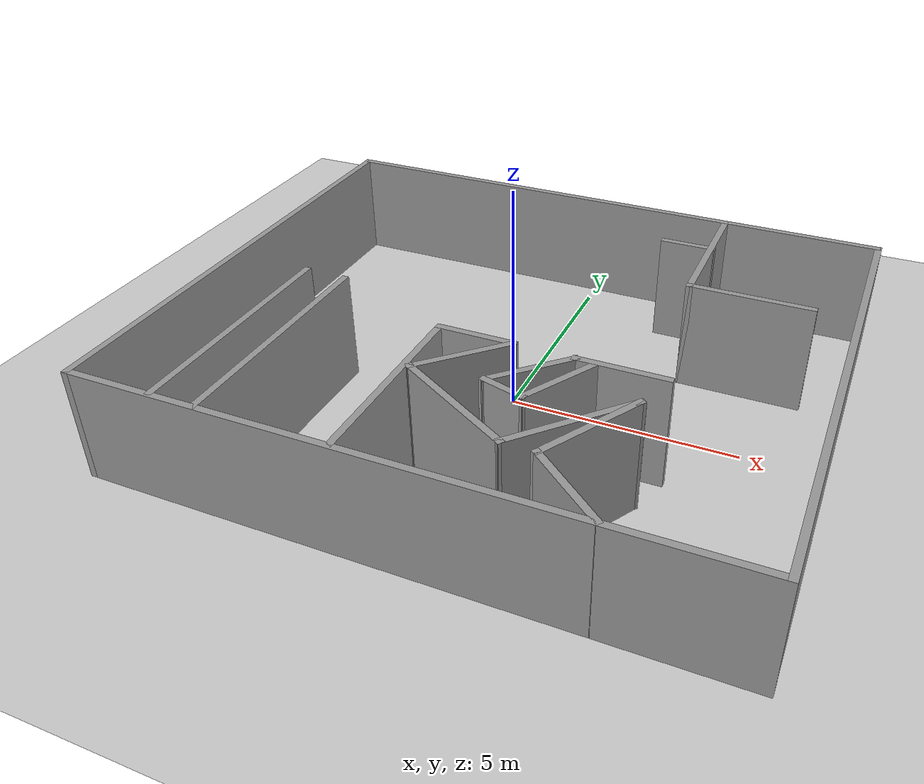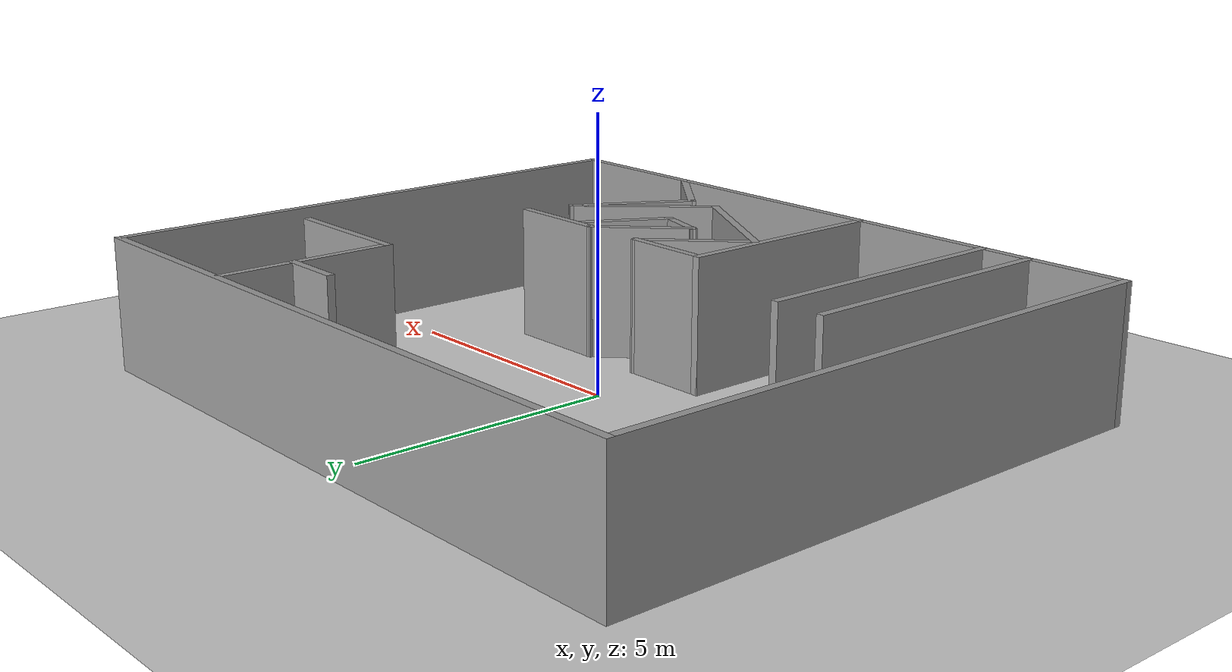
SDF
<sdf version="1.6">
 <world name="default">
  <light name="sun" type="directional">
   <pose>0 0 10 0 -0 0</pose>
   <diffuse>0.8 0.8 0.8 1</diffuse>
   <specular>0.2 0.2 0.2 1</specular>
   <attenuation>
    <range>1000</range>
    <constant>0.9</constant>
    <linear>0.01</linear>
    <quadratic>0.001</quadratic>
   </attenuation>
   <direction>-0.5 0.1 -0.9</direction>
  </light>
  <model name="ground_plane">
   <static>1</static>
   <link name="link">
    <collision name="collision">
     <geometry><plane><normal>0 0 1</normal><size>100 100</size></plane></geometry>
     <surface>
      <contact><collide_bitmask>65535</collide_bitmask></contact>
      <friction><ode><mu>100</mu><mu2>50</mu2></ode></friction>
     </surface>
    </collision>
    <visual name="visual">
     <cast_shadows>0</cast_shadows>
     <geometry><plane><normal>0 0 1</normal><size>100 100</size></plane></geometry>
     <material>
      <script><uri>file://media/materials/scripts/gazebo.material</uri><name>Gazebo/Grey</name></script>
     </material>
    </visual>
   </link>
  </model>
  <gravity>0 0 -9.8</gravity>
  <magnetic_field>6e-06 2.3e-05 -4.2e-05</magnetic_field>
  <atmosphere type="adiabatic"/>
  <physics name="default_physics" default="0" type="ode">
   <max_step_size>0.001</max_step_size>
   <real_time_factor>1</real_time_factor>
   <real_time_update_rate>1000</real_time_update_rate>
  </physics>
  <scene><ambient>0.4 0.4 0.4 1</ambient><background>0.7 0.7 0.7 1</background><shadows>1</shadows></scene>
  <spherical_coordinates>
   <surface_model>EARTH_WGS84</surface_model>
   <latitude_deg>0</latitude_deg>
   <longitude_deg>0</longitude_deg>
   <elevation>0</elevation>
   <heading_deg>0</heading_deg>
  </spherical_coordinates>
  <model name="building_tags">
   <link name="Wall_0">
    <collision name="Wall_0_Collision">
     <geometry><box><size>11.25 0.15 2.5</size></box></geometry>
     <pose>0 0 1.25 0 -0 0</pose>
    </collision>
    <visual name="Wall_0_Visual">
     <pose>0 0 1.25 0 -0 0</pose>
     <geometry><box><size>11.25 0.15 2.5</size></box></geometry>
     <material>
      <script><uri>file://media/materials/scripts/gazebo.material</uri><name>Gazebo/Grey</name></script>
      <ambient>1 1 1 1</ambient>
     </material>
     <meta><layer>0</layer></meta>
    </visual>
    <pose>-6.675 0.002685 0 0 -0 1.5708</pose>
   </link>
   <link name="Wall_10">
    <collision name="Wall_10_Collision">
     <geometry><box><size>5.25 0.15 2.5</size></box></geometry>
     <pose>0 0 1.25 0 -0 0</pose>
    </collision>
    <visual name="Wall_10_Visual">
     <pose>0 0 1.25 0 -0 0</pose>
     <geometry><box><size>5.25 0.15 2.5</size></box></geometry>
     <material>
      <script><uri>file://media/materials/scripts/gazebo.material</uri><name>Gazebo/Grey</name></script>
      <ambient>1 1 1 1</ambient>
     </material>
     <meta><layer>0</layer></meta>
    </visual>
    <pose>-4.78507 -2.94904 0 0 -0 1.5708</pose>
   </link>
   <link name="Wall_12">
    <collision name="Wall_12_Collision">
     <geometry><box><size>5.25 0.15 2.5</size></box></geometry>
     <pose>0 0 1.25 0 -0 0</pose>
    </collision>
    <visual name="Wall_12_Visual">
     <pose>0 0 1.25 0 -0 0</pose>
     <geometry><box><size>5.25 0.15 2.5</size></box></geometry>
     <material>
      <script><uri>file://media/materials/scripts/gazebo.material</uri><name>Gazebo/Grey</name></script>
      <ambient>1 1 1 1</ambient>
     </material>
     <meta><layer>0</layer></meta>
    </visual>
    <pose>-3.81359 -2.97217 0 0 -0 1.5708</pose>
   </link>
   <link name="Wall_14">
    <collision name="Wall_14_Collision">
     <geometry><box><size>4.25 0.15 2.5</size></box></geometry>
     <pose>0 0 1.25 0 -0 0</pose>
    </collision>
    <visual name="Wall_14_Visual">
     <pose>0 0 1.25 0 -0 0</pose>
     <geometry><box><size>4.25 0.15 2.5</size></box></geometry>
     <material>
      <script><uri>file://media/materials/scripts/gazebo.material</uri><name>Gazebo/Grey</name></script>
      <ambient>1 1 1 1</ambient>
     </material>
     <meta><layer>0</layer></meta>
    </visual>
    <pose>-1.01478 -3.44904 0 0 -0 1.5708</pose>
   </link>
   <link name="Wall_15">
    <collision name="Wall_15_Collision">
     <geometry><box><size>1.75 0.15 2.5</size></box></geometry>
     <pose>0 0 1.25 0 -0 0</pose>
    </collision>
    <visual name="Wall_15_Visual">
     <pose>0 0 1.25 0 -0 0</pose>
     <geometry><box><size>1.75 0.15 2.5</size></box></geometry>
     <material>
      <script><uri>file://media/materials/scripts/gazebo.material</uri><name>Gazebo/Grey</name></script>
      <ambient>1 1 1 1</ambient>
     </material>
     <meta><layer>0</layer></meta>
    </visual>
    <pose>-0.214784 -1.39904 0 0 -0 0</pose>
   </link>
   <link name="Wall_18">
    <collision name="Wall_18_Collision">
     <geometry><box><size>2 0.15 2.5</size></box></geometry>
     <pose>0 0 1.25 0 -0 0</pose>
    </collision>
    <visual name="Wall_18_Visual">
     <pose>0 0 1.25 0 -0 0</pose>
     <geometry><box><size>2 0.15 2.5</size></box></geometry>
     <material>
      <script><uri>file://media/materials/scripts/gazebo.material</uri><name>Gazebo/Grey</name></script>
      <ambient>1 1 1 1</ambient>
     </material>
     <meta><layer>0</layer></meta>
    </visual>
    <pose>2.80199 -1.42217 0 0 -0 3.14159</pose>
   </link>
   <link name="Wall_19">
    <collision name="Wall_19_Collision">
     <geometry><box><size>2 0.15 2.5</size></box></geometry>
     <pose>0 0 1.25 0 -0 0</pose>
    </collision>
    <visual name="Wall_19_Visual">
     <pose>0 0 1.25 0 -0 0</pose>
     <geometry><box><size>2 0.15 2.5</size></box></geometry>
     <material>
      <script><uri>file://media/materials/scripts/gazebo.material</uri><name>Gazebo/Grey</name></script>
      <ambient>1 1 1 1</ambient>
     </material>
     <meta><layer>0</layer></meta>
    </visual>
    <pose>1.22292 -2.07624 0 0 -0 -2.35619</pose>
   </link>
   <link name="Wall_2">
    <collision name="Wall_2_Collision">
     <geometry><box><size>13.5 0.15 2.5</size></box></geometry>
     <pose>0 0 1.25 0 -0 0</pose>
    </collision>
    <visual name="Wall_2_Visual">
     <pose>0 0 1.25 0 -0 0</pose>
     <geometry><box><size>13.5 0.15 2.5</size></box></geometry>
     <material>
      <script><uri>file://media/materials/scripts/gazebo.material</uri><name>Gazebo/Grey</name></script>
      <ambient>1 1 1 1</ambient>
     </material>
     <meta><layer>0</layer></meta>
    </visual>
    <pose>-0 5.55269 0 0 -0 0</pose>
   </link>
   <link name="Wall_21">
    <collision name="Wall_21_Collision">
     <geometry><box><size>2.25 0.15 2.5</size></box></geometry>
     <pose>0 0 1.25 0 -0 0</pose>
    </collision>
    <visual name="Wall_21_Visual">
     <pose>0 0 1.25 0 -0 0</pose>
     <geometry><box><size>2.25 0.15 2.5</size></box></geometry>
     <material>
      <script><uri>file://media/materials/scripts/gazebo.material</uri><name>Gazebo/Grey</name></script>
      <ambient>1 1 1 1</ambient>
     </material>
     <meta><layer>0</layer></meta>
    </visual>
    <pose>-0.157247 -2.1415 0 0 -0 -2.35619</pose>
   </link>
   <link name="Wall_22">
    <collision name="Wall_22_Collision">
     <geometry><box><size>3 0.15 2.5</size></box></geometry>
     <pose>0 0 1.25 0 -0 0</pose>
    </collision>
    <visual name="Wall_22_Visual">
     <pose>0 0 1.25 0 -0 0</pose>
     <geometry><box><size>3 0.15 2.5</size></box></geometry>
     <material>
      <script><uri>file://media/materials/scripts/gazebo.material</uri><name>Gazebo/Grey</name></script>
      <ambient>1 1 1 1</ambient>
     </material>
     <meta><layer>0</layer></meta>
    </visual>
    <pose>0.334378 -3.59646 0 0 -0 -0.523599</pose>
   </link>
   <link name="Wall_24">
    <collision name="Wall_24_Collision">
     <geometry><box><size>1.03735 0.15 2.5</size></box></geometry>
     <pose>0 0 1.25 0 -0 0</pose>
    </collision>
    <visual name="Wall_24_Visual">
     <pose>0 0 1.25 0 -0 0</pose>
     <geometry><box><size>1.03735 0.15 2.5</size></box></geometry>
     <material>
      <script><uri>file://media/materials/scripts/gazebo.material</uri><name>Gazebo/Grey</name></script>
      <ambient>1 1 1 1</ambient>
     </material>
     <meta><layer>0</layer></meta>
    </visual>
    <pose>0.995921 -2.85082 0 0 -0 -0.274999</pose>
   </link>
   <link name="Wall_25">
    <collision name="Wall_25_Collision">
     <geometry><box><size>1.85 0.15 2.5</size></box></geometry>
     <pose>0 0 1.25 0 -0 0</pose>
    </collision>
    <visual name="Wall_25_Visual">
     <pose>0 0 1.25 0 -0 0</pose>
     <geometry><box><size>1.85 0.15 2.5</size></box></geometry>
     <material>
      <script><uri>file://media/materials/scripts/gazebo.material</uri><name>Gazebo/Grey</name></script>
      <ambient>1 1 1 1</ambient>
     </material>
     <meta><layer>0</layer></meta>
    </visual>
    <pose>1.848 -2.23531 0 0 -0 1.04713</pose>
   </link>
   <link name="Wall_27">
    <collision name="Wall_27_Collision">
     <geometry><box><size>2.89822 0.15 2.5</size></box></geometry>
     <pose>0 0 1.25 0 -0 0</pose>
    </collision>
    <visual name="Wall_27_Visual">
     <pose>0 0 1.25 0 -0 0</pose>
     <geometry><box><size>2.89822 0.15 2.5</size></box></geometry>
     <material>
      <script><uri>file://media/materials/scripts/gazebo.material</uri><name>Gazebo/Grey</name></script>
      <ambient>1 1 1 1</ambient>
     </material>
     <meta><layer>0</layer></meta>
    </visual>
    <pose>2.50185 -3.30051 0 0 -0 0.824034</pose>
   </link>
   <link name="Wall_28">
    <collision name="Wall_28_Collision">
     <geometry><box><size>2.5 0.15 2.5</size></box></geometry>
     <pose>0 0 1.25 0 -0 0</pose>
    </collision>
    <visual name="Wall_28_Visual">
     <pose>0 0 1.25 0 -0 0</pose>
     <geometry><box><size>2.5 0.15 2.5</size></box></geometry>
     <material>
      <script><uri>file://media/materials/scripts/gazebo.material</uri><name>Gazebo/Grey</name></script>
      <ambient>1 1 1 1</ambient>
     </material>
     <meta><layer>0</layer></meta>
    </visual>
    <pose>2.84774 -3.30964 0 0 -0 -2.0944</pose>
   </link>
   <link name="Wall_29">
    <collision name="Wall_29_Collision">
     <geometry><box><size>2.04189 0.15 2.5</size></box></geometry>
     <pose>0 0 1.25 0 -0 0</pose>
    </collision>
    <visual name="Wall_29_Visual">
     <pose>0 0 1.25 0 -0 0</pose>
     <geometry><box><size>2.04189 0.15 2.5</size></box></geometry>
     <material>
      <script><uri>file://media/materials/scripts/gazebo.material</uri><name>Gazebo/Grey</name></script>
      <ambient>1 1 1 1</ambient>
     </material>
     <meta><layer>0</layer></meta>
    </visual>
    <pose>2.99362 -4.92469 0 0 -0 -0.683634</pose>
   </link>
   <link name="Wall_3">
    <collision name="Wall_3_Collision">
     <geometry><box><size>11.25 0.15 2.5</size></box></geometry>
     <pose>0 0 1.25 0 -0 0</pose>
    </collision>
    <visual name="Wall_3_Visual">
     <pose>0 0 1.25 0 -0 0</pose>
     <geometry><box><size>11.25 0.15 2.5</size></box></geometry>
     <material>
      <script><uri>file://media/materials/scripts/gazebo.material</uri><name>Gazebo/Grey</name></script>
      <ambient>1 1 1 1</ambient>
     </material>
     <meta><layer>0</layer></meta>
    </visual>
    <pose>6.675 0.002685 0 0 -0 -1.5708</pose>
   </link>
   <link name="Wall_31">
    <collision name="Wall_31_Collision">
     <geometry><box><size>1.25 0.15 2.5</size></box></geometry>
     <pose>0 0 1.25 0 -0 0</pose>
    </collision>
    <visual name="Wall_31_Visual">
     <pose>0 0 1.25 0 -0 0</pose>
     <geometry><box><size>1.25 0.15 2.5</size></box></geometry>
     <material>
      <script><uri>file://media/materials/scripts/gazebo.material</uri><name>Gazebo/Grey</name></script>
      <ambient>1 1 1 1</ambient>
     </material>
     <meta><layer>0</layer></meta>
    </visual>
    <pose>2.62331 4.07255 0 0 -0 3.14159</pose>
   </link>
   <link name="Wall_4">
    <collision name="Wall_4_Collision">
     <geometry><box><size>13.5 0.15 2.5</size></box></geometry>
     <pose>0 0 1.25 0 -0 0</pose>
    </collision>
    <visual name="Wall_4_Visual">
     <pose>0 0 1.25 0 -0 0</pose>
     <geometry><box><size>13.5 0.15 2.5</size></box></geometry>
     <material>
      <script><uri>file://media/materials/scripts/gazebo.material</uri><name>Gazebo/Grey</name></script>
      <ambient>1 1 1 1</ambient>
     </material>
     <meta><layer>0</layer></meta>
    </visual>
    <pose>-0 -5.54732 0 0 -0 3.14159</pose>
   </link>
   <link name="Wall_7">
    <collision name="Wall_7_Collision">
     <geometry><box><size>3.5 0.15 2.5</size></box></geometry>
     <pose>0 0 1.25 0 -0 0</pose>
    </collision>
    <visual name="Wall_7_Visual">
     <pose>0 0 1.25 0 -0 0</pose>
     <geometry><box><size>3.5 0.15 2.5</size></box></geometry>
     <material>
      <script><uri>file://media/materials/scripts/gazebo.material</uri><name>Gazebo/Grey</name></script>
      <ambient>1 1 1 1</ambient>
     </material>
     <meta><layer>0</layer></meta>
    </visual>
    <pose>3.15315 3.87476 0 0 -0 -1.5708</pose>
   </link>
   <link name="Wall_8">
    <collision name="Wall_8_Collision">
     <geometry><box><size>2.75 0.15 2.5</size></box></geometry>
     <pose>0 0 1.25 0 -0 0</pose>
    </collision>
    <visual name="Wall_8_Visual">
     <pose>0 0 1.25 0 -0 0</pose>
     <geometry><box><size>2.75 0.15 2.5</size></box></geometry>
     <material>
      <script><uri>file://media/materials/scripts/gazebo.material</uri><name>Gazebo/Grey</name></script>
      <ambient>1 1 1 1</ambient>
     </material>
     <meta><layer>0</layer></meta>
    </visual>
    <pose>4.45315 2.19976 0 0 -0 0</pose>
   </link>
   <static>1</static>
  </model>
  <model name="Apriltag36_11_00000">
   <link name="main">
    <inertial>
     <mass>1</mass>
     <inertia><ixx>1</ixx><ixy>0</ixy><ixz>0</ixz><iyy>1</iyy><iyz>0</iyz><izz>1</izz></inertia>
    </inertial>
    <visual name="main_Visual">
     <geometry><box><size>0.25 0.25 0.01</size></box></geometry>
     <material>
      <script>
       <uri>model://Apriltag36_11_00000/materials/scripts</uri>
       <uri>model://Apriltag36_11_00000/materials/textures</uri>
       <name>Apriltag36_11_00000</name>
      </script>
      <shader type="pixel"><normal_map>__default__</normal_map></shader>
      <ambient>1 1 1 1</ambient>
      <diffuse>1 1 1 1</diffuse>
      <specular>0 0 0 1</specular>
      <emissive>0 0 0 1</emissive>
     </material>
     <pose>0 -0.95 1 1.5707 -0 0</pose>
    </visual>
   </link>
   <static>1</static>
   <pose>-2.497 -4.52186 -0.778145 0 -0 0</pose>
  </model>
 </world>
</sdf>
